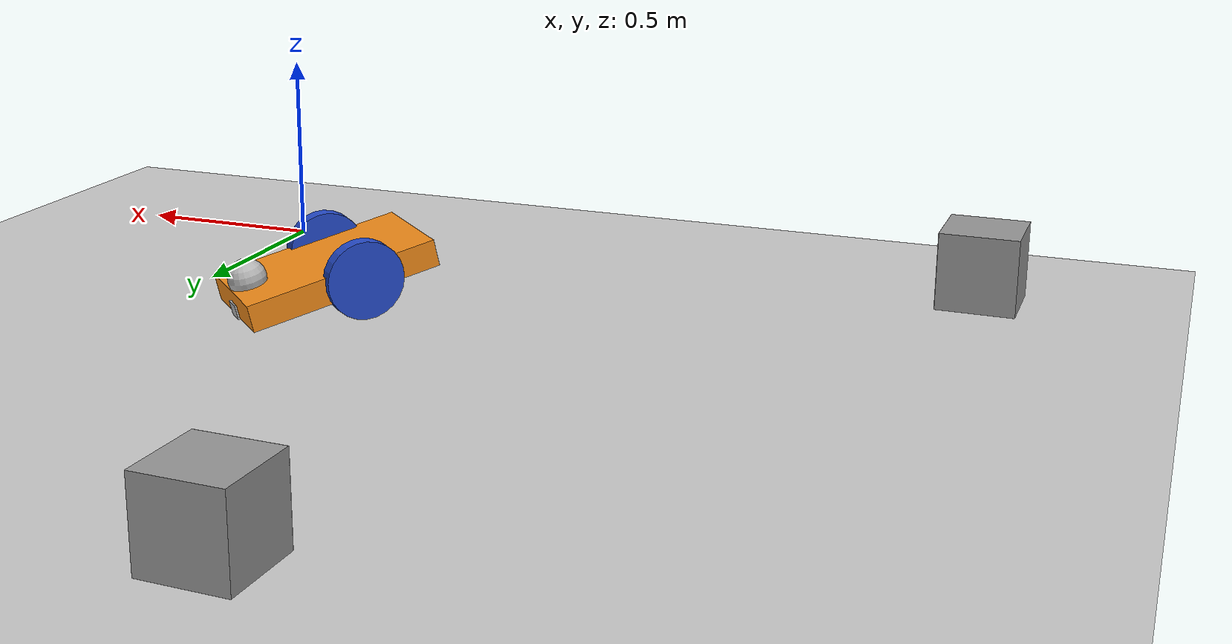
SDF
<sdf version="1.7">
 <world name="default">
  <model name="ground_plane">
   <static>1</static>
   <link name="link">
    <collision name="collision">
     <geometry><plane><normal>0 0 1</normal><size>100 100</size></plane></geometry>
     <surface>
      <contact><collide_bitmask>65535</collide_bitmask></contact>
      <friction><ode><mu>100</mu><mu2>50</mu2></ode></friction>
     </surface>
    </collision>
    <visual name="visual">
     <cast_shadows>0</cast_shadows>
     <geometry><plane><normal>0 0 1</normal><size>100 100</size></plane></geometry>
     <material>
      <script><uri>file://media/materials/scripts/gazebo.material</uri><name>Gazebo/Grey</name></script>
     </material>
    </visual>
   </link>
  </model>
  <model name="marker11_box">
   <link name="marker">
    <inertial>
     <mass>0.1</mass>
     <inertia><ixx>0</ixx><ixy>0</ixy><ixz>0</ixz><iyy>0</iyy><iyz>0</iyz><izz>0</izz></inertia>
    </inertial>
    <self_collide>1</self_collide>
    <pose>-0.76428 -0.101106 0.120004 -0.015494 1.56996 -0.015507</pose>
    <visual name="visual">
     <geometry><box><size>0.2 0.2 0.001</size></box></geometry>
     <material>
      <script>
       <uri>model://marker11/material/scripts</uri>
       <uri>model://marker11/material/textures</uri>
       <name>Aruco/marker11</name>
      </script>
      <shader type="pixel"><normal_map>__default__</normal_map></shader>
      <emissive>0 0 0 1</emissive>
      <ambient>1 1 1 1</ambient>
      <diffuse>1 1 1 1</diffuse>
      <specular>0 0 0 1</specular>
     </material>
    </visual>
    <collision name="collision">
     <geometry><box><size>0.2 0.2 0.02</size></box></geometry>
     <surface>
      <friction>
       <ode><mu>1</mu><mu2>1</mu2><fdir1>0 0 0</fdir1><slip1>0</slip1><slip2>0</slip2></ode>
       <torsional>
        <coefficient>1</coefficient>
        <patch_radius>0</patch_radius>
        <surface_radius>0</surface_radius>
        <use_patch_radius>1</use_patch_radius>
        <ode><slip>0</slip></ode>
       </torsional>
      </friction>
      <bounce><restitution_coefficient>0</restitution_coefficient><threshold>1e+06</threshold></bounce>
      <contact>
       <collide_without_contact>0</collide_without_contact>
       <collide_without_contact_bitmask>1</collide_without_contact_bitmask>
       <collide_bitmask>1</collide_bitmask>
       <ode>
        <soft_cfm>0</soft_cfm>
        <soft_erp>0.2</soft_erp>
        <kp>1e+13</kp>
        <kd>1</kd>
        <max_vel>0.01</max_vel>
        <min_depth>0</min_depth>
       </ode>
       <bullet>
        <split_impulse>1</split_impulse>
        <split_impulse_penetration_threshold>-0.01</split_impulse_penetration_threshold>
        <soft_cfm>0</soft_cfm>
        <soft_erp>0.2</soft_erp>
        <kp>1e+13</kp>
        <kd>1</kd>
       </bullet>
      </contact>
     </surface>
    </collision>
   </link>
   <link name="link_1">
    <inertial>
     <mass>1</mass>
     <inertia>
      <ixx>0.166667</ixx>
      <ixy>0</ixy>
      <ixz>0</ixz>
      <iyy>0.166667</iyy>
      <iyz>0</iyz>
      <izz>0.166667</izz>
     </inertia>
    </inertial>
    <pose>-0.86428 -0.101106 0.12 -1.3e-05 -4.2e-05 0</pose>
    <visual name="visual">
     <geometry><box><size>0.2 0.2 0.2</size></box></geometry>
     <material>
      <lighting>1</lighting>
      <script><uri>file://media/materials/scripts/gazebo.material</uri><name>Gazebo/Grey</name></script>
      <shader type="pixel"><normal_map>__default__</normal_map></shader>
      <emissive>0 0 0 1</emissive>
      <ambient>0.3 0.3 0.3 1</ambient>
      <diffuse>0.7 0.7 0.7 1</diffuse>
      <specular>0.01 0.01 0.01 1</specular>
     </material>
    </visual>
    <collision name="collision">
     <geometry><box><size>0.2 0.2 0.2</size></box></geometry>
     <surface>
      <friction>
       <ode><mu>1</mu><mu2>1</mu2><fdir1>0 0 0</fdir1><slip1>0</slip1><slip2>0</slip2></ode>
       <torsional>
        <coefficient>1</coefficient>
        <patch_radius>0</patch_radius>
        <surface_radius>0</surface_radius>
        <use_patch_radius>1</use_patch_radius>
        <ode><slip>0</slip></ode>
       </torsional>
      </friction>
      <bounce><restitution_coefficient>0</restitution_coefficient><threshold>1e+06</threshold></bounce>
      <contact>
       <collide_without_contact>0</collide_without_contact>
       <collide_without_contact_bitmask>1</collide_without_contact_bitmask>
       <collide_bitmask>1</collide_bitmask>
       <ode>
        <soft_cfm>0</soft_cfm>
        <soft_erp>0.2</soft_erp>
        <kp>1e+13</kp>
        <kd>1</kd>
        <max_vel>0.01</max_vel>
        <min_depth>0</min_depth>
       </ode>
       <bullet>
        <split_impulse>1</split_impulse>
        <split_impulse_penetration_threshold>-0.01</split_impulse_penetration_threshold>
        <soft_cfm>0</soft_cfm>
        <soft_erp>0.2</soft_erp>
        <kp>1e+13</kp>
        <kd>1</kd>
       </bullet>
      </contact>
     </surface>
    </collision>
   </link>
   <joint name="link_1_JOINT_3" type="fixed">
    <parent>link_1</parent>
    <child>marker</child>
    <physics>
     <ode><limit><cfm>0</cfm><erp>0.2</erp></limit><suspension><cfm>0</cfm><erp>0.2</erp></suspension></ode>
    </physics>
   </joint>
   <static>0</static>
   <pose>-1.08019 0.058178 -0.020006 2.2e-05 1.8e-05 -0.008088</pose>
  </model>
  <model name="marker12_box">
   <link name="marker">
    <inertial>
     <mass>0.1</mass>
     <inertia><ixx>0</ixx><ixy>0</ixy><ixz>0</ixz><iyy>0</iyy><iyz>0</iyz><izz>0</izz></inertia>
    </inertial>
    <self_collide>1</self_collide>
    <pose>-0.76428 -0.101106 0.120004 -0.015494 1.56996 -0.015507</pose>
    <visual name="visual">
     <geometry><box><size>0.2 0.2 0.001</size></box></geometry>
     <material>
      <script>
       <uri>model://marker12/material/scripts</uri>
       <uri>model://marker12/material/textures</uri>
       <name>Aruco/marker12</name>
      </script>
      <shader type="pixel"><normal_map>__default__</normal_map></shader>
      <emissive>0 0 0 1</emissive>
      <ambient>1 1 1 1</ambient>
      <diffuse>1 1 1 1</diffuse>
      <specular>0 0 0 1</specular>
     </material>
    </visual>
    <collision name="collision">
     <geometry><box><size>0.2 0.2 0.02</size></box></geometry>
     <surface>
      <friction>
       <ode><mu>1</mu><mu2>1</mu2><fdir1>0 0 0</fdir1><slip1>0</slip1><slip2>0</slip2></ode>
       <torsional>
        <coefficient>1</coefficient>
        <patch_radius>0</patch_radius>
        <surface_radius>0</surface_radius>
        <use_patch_radius>1</use_patch_radius>
        <ode><slip>0</slip></ode>
       </torsional>
      </friction>
      <bounce><restitution_coefficient>0</restitution_coefficient><threshold>1e+06</threshold></bounce>
      <contact>
       <collide_without_contact>0</collide_without_contact>
       <collide_without_contact_bitmask>1</collide_without_contact_bitmask>
       <collide_bitmask>1</collide_bitmask>
       <ode>
        <soft_cfm>0</soft_cfm>
        <soft_erp>0.2</soft_erp>
        <kp>1e+13</kp>
        <kd>1</kd>
        <max_vel>0.01</max_vel>
        <min_depth>0</min_depth>
       </ode>
       <bullet>
        <split_impulse>1</split_impulse>
        <split_impulse_penetration_threshold>-0.01</split_impulse_penetration_threshold>
        <soft_cfm>0</soft_cfm>
        <soft_erp>0.2</soft_erp>
        <kp>1e+13</kp>
        <kd>1</kd>
       </bullet>
      </contact>
     </surface>
    </collision>
   </link>
   <link name="link_1">
    <inertial>
     <mass>1</mass>
     <inertia>
      <ixx>0.166667</ixx>
      <ixy>0</ixy>
      <ixz>0</ixz>
      <iyy>0.166667</iyy>
      <iyz>0</iyz>
      <izz>0.166667</izz>
     </inertia>
    </inertial>
    <pose>-0.86428 -0.101106 0.12 -1.3e-05 -4.2e-05 0</pose>
    <visual name="visual">
     <geometry><box><size>0.2 0.2 0.2</size></box></geometry>
     <material>
      <lighting>1</lighting>
      <script><uri>file://media/materials/scripts/gazebo.material</uri><name>Gazebo/Grey</name></script>
      <shader type="pixel"><normal_map>__default__</normal_map></shader>
      <emissive>0 0 0 1</emissive>
      <ambient>0.3 0.3 0.3 1</ambient>
      <diffuse>0.7 0.7 0.7 1</diffuse>
      <specular>0.01 0.01 0.01 1</specular>
     </material>
    </visual>
    <collision name="collision">
     <geometry><box><size>0.2 0.2 0.2</size></box></geometry>
     <surface>
      <friction>
       <ode><mu>1</mu><mu2>1</mu2><fdir1>0 0 0</fdir1><slip1>0</slip1><slip2>0</slip2></ode>
       <torsional>
        <coefficient>1</coefficient>
        <patch_radius>0</patch_radius>
        <surface_radius>0</surface_radius>
        <use_patch_radius>1</use_patch_radius>
        <ode><slip>0</slip></ode>
       </torsional>
      </friction>
      <bounce><restitution_coefficient>0</restitution_coefficient><threshold>1e+06</threshold></bounce>
      <contact>
       <collide_without_contact>0</collide_without_contact>
       <collide_without_contact_bitmask>1</collide_without_contact_bitmask>
       <collide_bitmask>1</collide_bitmask>
       <ode>
        <soft_cfm>0</soft_cfm>
        <soft_erp>0.2</soft_erp>
        <kp>1e+13</kp>
        <kd>1</kd>
        <max_vel>0.01</max_vel>
        <min_depth>0</min_depth>
       </ode>
       <bullet>
        <split_impulse>1</split_impulse>
        <split_impulse_penetration_threshold>-0.01</split_impulse_penetration_threshold>
        <soft_cfm>0</soft_cfm>
        <soft_erp>0.2</soft_erp>
        <kp>1e+13</kp>
        <kd>1</kd>
       </bullet>
      </contact>
     </surface>
    </collision>
   </link>
   <joint name="link_1_JOINT_3" type="fixed">
    <parent>link_1</parent>
    <child>marker</child>
    <physics>
     <ode><limit><cfm>0</cfm><erp>0.2</erp></limit><suspension><cfm>0</cfm><erp>0.2</erp></suspension></ode>
    </physics>
   </joint>
   <static>0</static>
   <pose>-0.837497 1.10114 -0.020009 1.1e-05 1.8e-05 -1.5987</pose>
  </model>
  <model name="Myrobot4">
   <link name="link_chassis">
    <inertial>
     <pose>0 0 0.1 0 -0 0</pose>
     <mass>5</mass>
     <inertia>
      <ixx>0.0395417</ixx>
      <ixy>0</ixy>
      <ixz>0</ixz>
      <iyy>0.106208</iyy>
      <iyz>0</iyz>
      <izz>0.106208</izz>
     </inertia>
    </inertial>
    <collision name="link_chassis_fixed_joint_lump__collision_chassis_collision">
     <geometry><box><size>0.5 0.3 0.07</size></box></geometry>
    </collision>
    <collision name="link_chassis_fixed_joint_lump__caster_front_collision_collision_1">
     <pose>0.35 0 -0.05 0 -0 0</pose>
     <geometry><sphere><radius>0.05</radius></sphere></geometry>
    </collision>
    <visual name="link_chassis_visual">
     <geometry><box><size>0.5 0.3 0.07</size></box></geometry>
     <material>
      <script><name>Gazebo/Orange</name><uri>file://media/materials/scripts/gazebo.material</uri></script>
     </material>
    </visual>
    <visual name="link_chassis_fixed_joint_lump__caster_front_visual_visual_1">
     <pose>0.2 0 -0.05 0 -0 0</pose>
     <geometry><sphere><radius>0.05</radius></sphere></geometry>
    </visual>
   </link>
   <joint name="camera_joint" type="revolute">
    <pose relative_to="link_chassis">0.23 0 0 0 -0 0</pose>
    <parent>link_chassis</parent>
    <child>camera_link</child>
    <axis>
     <xyz>0 1 0</xyz>
     <limit><lower>-1e+16</lower><upper>1e+16</upper></limit>
     <dynamics><spring_reference>0</spring_reference><spring_stiffness>0</spring_stiffness></dynamics>
    </axis>
   </joint>
   <link name="camera_link">
    <pose relative_to="camera_joint">0 0 0 0 -0 0</pose>
    <inertial>
     <mass>1e-05</mass>
     <inertia><ixx>1e-06</ixx><ixy>0</ixy><ixz>0</ixz><iyy>1e-06</iyy><iyz>0</iyz><izz>1e-06</izz></inertia>
    </inertial>
    <collision name="camera_link_collision">
     <pose>0 0 0.025 0 -0 0</pose>
     <geometry><box><size>0.05 0.05 0.05</size></box></geometry>
    </collision>
    <visual name="camera_link_visual">
     <pose>0 0 0.025 0 -0 0</pose>
     <geometry><box><size>0.05 0.05 0.05</size></box></geometry>
    </visual>
    <sensor name="camera1" type="camera">
     <update_rate>30</update_rate>
     <camera name="head">
      <horizontal_fov>1.39626</horizontal_fov>
      <image><width>800</width><height>800</height><format>R8G8B8</format></image>
      <clip><near>0.02</near><far>300</far></clip>
      <noise><type>gaussian</type><mean>0</mean><stddev>0.007</stddev></noise>
     </camera>
     <plugin name="camera_controller" filename="libgazebo_ros_camera.so">
      <alwaysOn>1</alwaysOn>
      <updateRate>0.0</updateRate>
      <cameraName>robot/camera1</cameraName>
      <imageTopicName>image_raw</imageTopicName>
      <cameraInfoTopicName>camera_info</cameraInfoTopicName>
      <frameName>camera_link</frameName>
      <hackBaseline>0.07</hackBaseline>
      <distortionK1>0.0</distortionK1>
      <distortionK2>0.0</distortionK2>
      <distortionK3>0.0</distortionK3>
      <distortionT1>0.0</distortionT1>
      <distortionT2>0.0</distortionT2>
      <robotNamespace>/</robotNamespace>
     </plugin>
    </sensor>
   </link>
   <joint name="joint_left_wheel" type="revolute">
    <pose relative_to="link_chassis">-0.05 -0.15 0 0 -0 0</pose>
    <parent>link_chassis</parent>
    <child>link_left_wheel</child>
    <axis>
     <xyz>0 1 0</xyz>
     <limit><effort>10000</effort><velocity>1000</velocity><lower>-1e+16</lower><upper>1e+16</upper></limit>
     <dynamics><spring_reference>0</spring_reference><spring_stiffness>0</spring_stiffness></dynamics>
    </axis>
   </joint>
   <link name="link_left_wheel">
    <pose relative_to="joint_left_wheel">0 0 0 0 -0 0</pose>
    <inertial>
     <pose>0 0 0 -0 1.5707 1.5707</pose>
     <mass>0.2</mass>
     <inertia>
      <ixx>0.000526667</ixx>
      <ixy>0</ixy>
      <ixz>0</ixz>
      <iyy>0.000526667</iyy>
      <iyz>0</iyz>
      <izz>0.001</izz>
     </inertia>
    </inertial>
    <collision name="link_left_wheel_collision_collision">
     <pose>0 0 0 1.57089 1.57079 -3.14159</pose>
     <geometry><cylinder><length>0.04</length><radius>0.1</radius></cylinder></geometry>
    </collision>
    <visual name="link_left_wheel_visual_visual">
     <pose>0 0 0 1.57089 1.57079 -3.14159</pose>
     <geometry><cylinder><length>0.04</length><radius>0.1</radius></cylinder></geometry>
     <material>
      <script><name>Gazebo/Blue</name><uri>file://media/materials/scripts/gazebo.material</uri></script>
     </material>
    </visual>
   </link>
   <joint name="joint_right_wheel" type="revolute">
    <pose relative_to="link_chassis">-0.05 0.15 0 0 -0 0</pose>
    <parent>link_chassis</parent>
    <child>link_right_wheel</child>
    <axis>
     <xyz>0 1 0</xyz>
     <limit><effort>10000</effort><velocity>1000</velocity><lower>-1e+16</lower><upper>1e+16</upper></limit>
     <dynamics><spring_reference>0</spring_reference><spring_stiffness>0</spring_stiffness></dynamics>
    </axis>
   </joint>
   <link name="link_right_wheel">
    <pose relative_to="joint_right_wheel">0 0 0 0 -0 0</pose>
    <inertial>
     <pose>0 0 0 -0 1.5707 1.5707</pose>
     <mass>0.2</mass>
     <inertia>
      <ixx>0.000526667</ixx>
      <ixy>0</ixy>
      <ixz>0</ixz>
      <iyy>0.000526667</iyy>
      <iyz>0</iyz>
      <izz>0.001</izz>
     </inertia>
    </inertial>
    <collision name="link_right_wheel_collision_collision">
     <pose>0 0 0 1.57089 1.57079 -3.14159</pose>
     <geometry><cylinder><length>0.04</length><radius>0.1</radius></cylinder></geometry>
    </collision>
    <visual name="link_right_wheel_visual_visual">
     <pose>0 0 0 1.57089 1.57079 -3.14159</pose>
     <geometry><cylinder><length>0.04</length><radius>0.1</radius></cylinder></geometry>
     <material>
      <script><name>Gazebo/Blue</name><uri>file://media/materials/scripts/gazebo.material</uri></script>
     </material>
    </visual>
   </link>
   <plugin name="differential_drive_controller" filename="libgazebo_ros_diff_drive.so">
    <legacyMode>1</legacyMode>
    <alwaysOn>1</alwaysOn>
    <updateRate>20</updateRate>
    <leftJoint>joint_right_wheel</leftJoint>
    <rightJoint>joint_left_wheel</rightJoint>
    <wheelSeparation>0.2</wheelSeparation>
    <wheelDiameter>0.2</wheelDiameter>
    <torque>0.1</torque>
    <commandTopic>cmd_vel</commandTopic>
    <odometryTopic>odom</odometryTopic>
    <odometryFrame>odom</odometryFrame>
    <robotBaseFrame>link_chassis</robotBaseFrame>
    <robotNamespace>/</robotNamespace>
   </plugin>
   <static>0</static>
   <plugin name="gazebo_ros_control" filename="libgazebo_ros_control.so">
    <robotNamespace>/robot</robotNamespace>
    <legacyModeNS>1</legacyModeNS>
   </plugin>
   <pose>-0.390638 0.580475 0.089027 -3.14159 0.22129 0.815958</pose>
  </model>
 </world>
</sdf>
